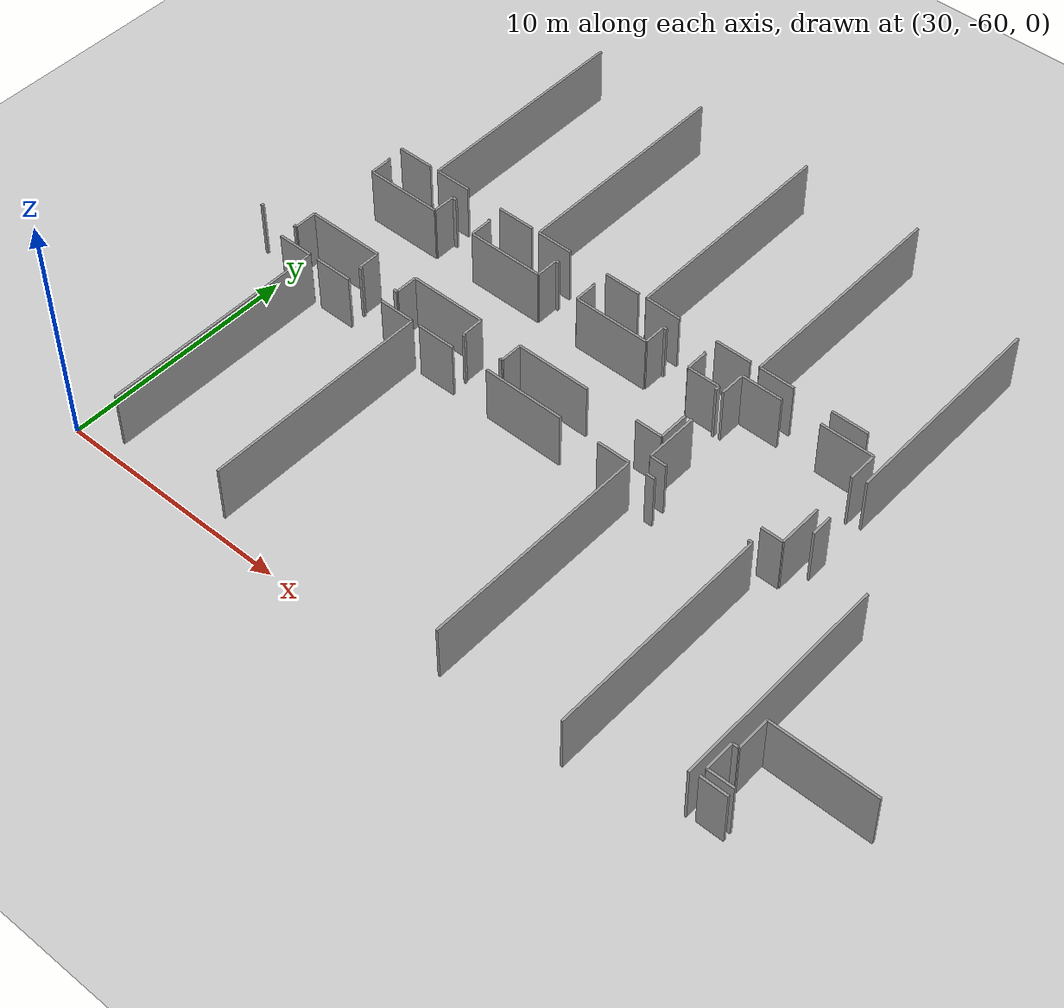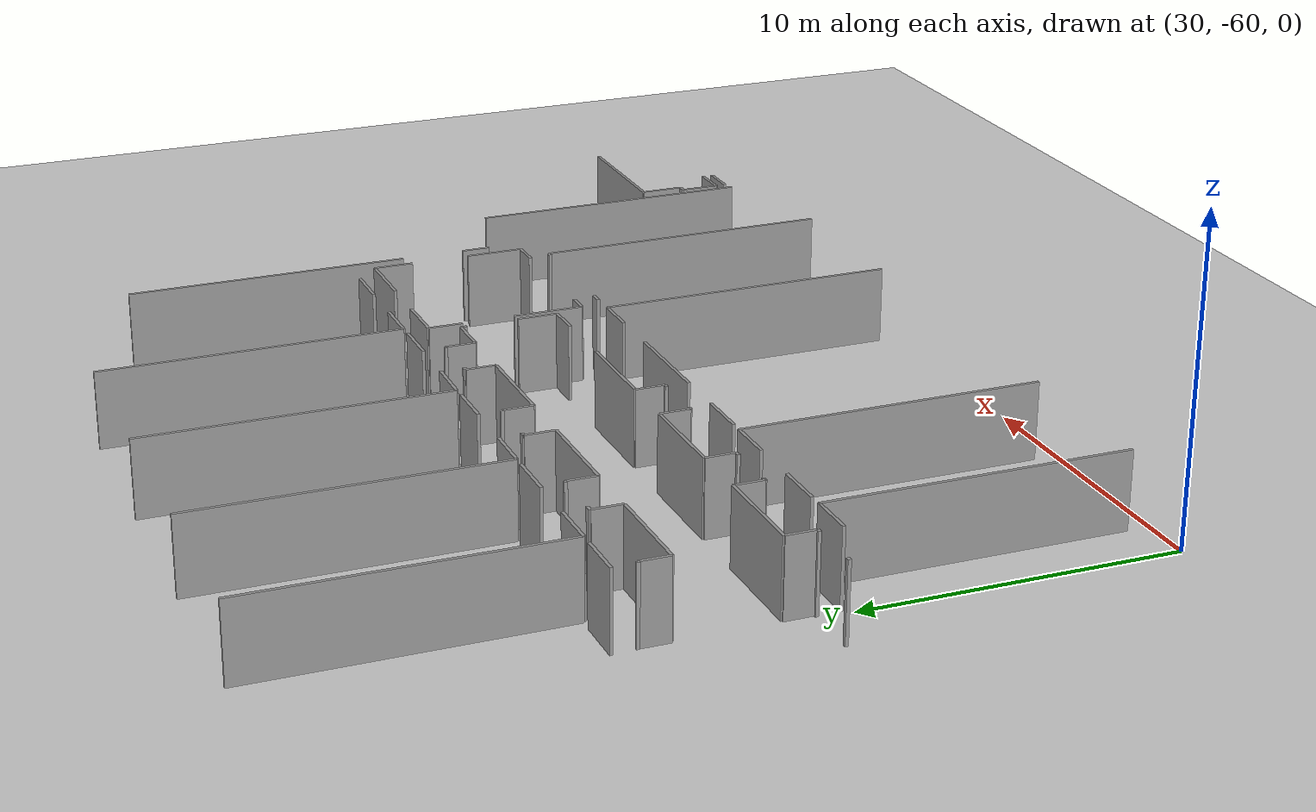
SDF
<sdf version="1.6">
 <world name="default">
  <model name="ground_plane">
   <static>1</static>
   <link name="link">
    <collision name="collision">
     <geometry><plane><normal>0 0 1</normal><size>100 100</size></plane></geometry>
     <surface><friction><ode><mu>100</mu><mu2>50</mu2></ode></friction></surface>
    </collision>
    <visual name="visual">
     <cast_shadows>0</cast_shadows>
     <geometry><plane><normal>0 0 1</normal><size>100 100</size></plane></geometry>
     <material>
      <script><uri>file://media/materials/scripts/gazebo.material</uri><name>Gazebo/Grey</name></script>
     </material>
    </visual>
   </link>
  </model>
  <model name="0510045926_A-40">
   <static>1</static>
   <link name="Wall_1794">
    <collision name="Wall_1794_Collision">
     <geometry><box><size>0.0680276425756 0.1 2.5</size></box></geometry>
     <pose>0.0340138212878 0 1.25 0 0 0</pose>
    </collision>
    <visual name="Wall_1794_Visual">
     <pose>0.0340138212878 0 1.25 0 0 0</pose>
     <geometry><box><size>0.0680276425756 0.1 2.5</size></box></geometry>
     <material>
      <script><uri>file://media/materials/scripts/gazebo.material</uri><name>Gazebo/Grey</name></script>
      <ambient>1 1 1 1</ambient>
     </material>
    </visual>
    <pose>164.12255129 -145.032700228 0 0 0 0.0</pose>
   </link>
   <link name="Wall_1795">
    <collision name="Wall_1795_Collision">
     <geometry><box><size>0.949087147725 0.1 2.5</size></box></geometry>
     <pose>0.474543573863 0 1.25 0 0 0</pose>
    </collision>
    <visual name="Wall_1795_Visual">
     <pose>0.474543573863 0 1.25 0 0 0</pose>
     <geometry><box><size>0.949087147725 0.1 2.5</size></box></geometry>
     <material>
      <script><uri>file://media/materials/scripts/gazebo.material</uri><name>Gazebo/Grey</name></script>
      <ambient>1 1 1 1</ambient>
     </material>
    </visual>
    <pose>164.190578933 -145.032700228 0 0 0 -1.57079632679</pose>
   </link>
   <link name="Wall_1796">
    <collision name="Wall_1796_Collision">
     <geometry><box><size>3.29324863723 0.1 2.5</size></box></geometry>
     <pose>1.64662431861 0 1.25 0 0 0</pose>
    </collision>
    <visual name="Wall_1796_Visual">
     <pose>1.64662431861 0 1.25 0 0 0</pose>
     <geometry><box><size>3.29324863723 0.1 2.5</size></box></geometry>
     <material>
      <script><uri>file://media/materials/scripts/gazebo.material</uri><name>Gazebo/Grey</name></script>
      <ambient>1 1 1 1</ambient>
     </material>
    </visual>
    <pose>164.190578933 -145.981787376 0 0 0 0.0</pose>
   </link>
   <link name="Wall_1797">
    <collision name="Wall_1797_Collision">
     <geometry><box><size>0.972186086063 0.1 2.5</size></box></geometry>
     <pose>0.486093043031 0 1.25 0 0 0</pose>
    </collision>
    <visual name="Wall_1797_Visual">
     <pose>0.486093043031 0 1.25 0 0 0</pose>
     <geometry><box><size>0.972186086063 0.1 2.5</size></box></geometry>
     <material>
      <script><uri>file://media/materials/scripts/gazebo.material</uri><name>Gazebo/Grey</name></script>
      <ambient>1 1 1 1</ambient>
     </material>
    </visual>
    <pose>167.48382757 -145.981787376 0 0 0 1.57079632679</pose>
   </link>
   <link name="Wall_1798">
    <collision name="Wall_1798_Collision">
     <geometry><box><size>0.20382909324 0.1 2.5</size></box></geometry>
     <pose>0.10191454662 0 1.25 0 0 0</pose>
    </collision>
    <visual name="Wall_1798_Visual">
     <pose>0.10191454662 0 1.25 0 0 0</pose>
     <geometry><box><size>0.20382909324 0.1 2.5</size></box></geometry>
     <material>
      <script><uri>file://media/materials/scripts/gazebo.material</uri><name>Gazebo/Grey</name></script>
      <ambient>1 1 1 1</ambient>
     </material>
    </visual>
    <pose>167.48382757 -145.009601289 0 0 0 0.0</pose>
   </link>
   <link name="Wall_1799">
    <collision name="Wall_1799_Collision">
     <geometry><box><size>0.0903650774513 0.1 2.5</size></box></geometry>
     <pose>0.0451825387256 0 1.25 0 0 0</pose>
    </collision>
    <visual name="Wall_1799_Visual">
     <pose>0.0451825387256 0 1.25 0 0 0</pose>
     <geometry><box><size>0.0903650774513 0.1 2.5</size></box></geometry>
     <material>
      <script><uri>file://media/materials/scripts/gazebo.material</uri><name>Gazebo/Grey</name></script>
      <ambient>1 1 1 1</ambient>
     </material>
    </visual>
    <pose>169.325396775 -145.009601289 0 0 0 0.0</pose>
   </link>
   <link name="Wall_1800">
    <collision name="Wall_1800_Collision">
     <geometry><box><size>0.971424582601 0.1 2.5</size></box></geometry>
     <pose>0.4857122913 0 1.25 0 0 0</pose>
    </collision>
    <visual name="Wall_1800_Visual">
     <pose>0.4857122913 0 1.25 0 0 0</pose>
     <geometry><box><size>0.971424582601 0.1 2.5</size></box></geometry>
     <material>
      <script><uri>file://media/materials/scripts/gazebo.material</uri><name>Gazebo/Grey</name></script>
      <ambient>1 1 1 1</ambient>
     </material>
    </visual>
    <pose>169.415761852 -145.009601289 0 0 0 -1.57079632679</pose>
   </link>
   <link name="Wall_1801">
    <collision name="Wall_1801_Collision">
     <geometry><box><size>3.30213284428 0.1 2.5</size></box></geometry>
     <pose>1.65106642214 0 1.25 0 0 0</pose>
    </collision>
    <visual name="Wall_1801_Visual">
     <pose>1.65106642214 0 1.25 0 0 0</pose>
     <geometry><box><size>3.30213284428 0.1 2.5</size></box></geometry>
     <material>
      <script><uri>file://media/materials/scripts/gazebo.material</uri><name>Gazebo/Grey</name></script>
      <ambient>1 1 1 1</ambient>
     </material>
    </visual>
    <pose>169.415761852 -145.981025872 0 0 0 0.0</pose>
   </link>
   <link name="Wall_1802">
    <collision name="Wall_1802_Collision">
     <geometry><box><size>0.973201424011 0.1 2.5</size></box></geometry>
     <pose>0.486600712006 0 1.25 0 0 0</pose>
    </collision>
    <visual name="Wall_1802_Visual">
     <pose>0.486600712006 0 1.25 0 0 0</pose>
     <geometry><box><size>0.973201424011 0.1 2.5</size></box></geometry>
     <material>
      <script><uri>file://media/materials/scripts/gazebo.material</uri><name>Gazebo/Grey</name></script>
      <ambient>1 1 1 1</ambient>
     </material>
    </visual>
    <pose>172.717894697 -145.981025872 0 0 0 1.57079632679</pose>
   </link>
   <link name="Wall_1803">
    <collision name="Wall_1803_Collision">
     <geometry><box><size>0.157377382078 0.1 2.5</size></box></geometry>
     <pose>0.078688691039 0 1.25 0 0 0</pose>
    </collision>
    <visual name="Wall_1803_Visual">
     <pose>0.078688691039 0 1.25 0 0 0</pose>
     <geometry><box><size>0.157377382078 0.1 2.5</size></box></geometry>
     <material>
      <script><uri>file://media/materials/scripts/gazebo.material</uri><name>Gazebo/Grey</name></script>
      <ambient>1 1 1 1</ambient>
     </material>
    </visual>
    <pose>172.717894697 -145.007824448 0 0 0 0.0</pose>
   </link>
   <link name="Wall_1804">
    <collision name="Wall_1804_Collision">
     <geometry><box><size>0.0705659874479 0.1 2.5</size></box></geometry>
     <pose>0.035282993724 0 1.25 0 0 0</pose>
    </collision>
    <visual name="Wall_1804_Visual">
     <pose>0.035282993724 0 1.25 0 0 0</pose>
     <geometry><box><size>0.0705659874479 0.1 2.5</size></box></geometry>
     <material>
      <script><uri>file://media/materials/scripts/gazebo.material</uri><name>Gazebo/Grey</name></script>
      <ambient>1 1 1 1</ambient>
     </material>
    </visual>
    <pose>174.549310522 -145.007824448 0 0 0 0.0</pose>
   </link>
   <link name="Wall_1805">
    <collision name="Wall_1805_Collision">
     <geometry><box><size>0.973455258499 0.1 2.5</size></box></geometry>
     <pose>0.486727629249 0 1.25 0 0 0</pose>
    </collision>
    <visual name="Wall_1805_Visual">
     <pose>0.486727629249 0 1.25 0 0 0</pose>
     <geometry><box><size>0.973455258499 0.1 2.5</size></box></geometry>
     <material>
      <script><uri>file://media/materials/scripts/gazebo.material</uri><name>Gazebo/Grey</name></script>
      <ambient>1 1 1 1</ambient>
     </material>
    </visual>
    <pose>174.61987651 -145.007824448 0 0 0 -1.57079632679</pose>
   </link>
   <link name="Wall_1806">
    <collision name="Wall_1806_Collision">
     <geometry><box><size>3.28639510607 0.1 2.5</size></box></geometry>
     <pose>1.64319755304 0 1.25 0 0 0</pose>
    </collision>
    <visual name="Wall_1806_Visual">
     <pose>1.64319755304 0 1.25 0 0 0</pose>
     <geometry><box><size>3.28639510607 0.1 2.5</size></box></geometry>
     <material>
      <script><uri>file://media/materials/scripts/gazebo.material</uri><name>Gazebo/Grey</name></script>
      <ambient>1 1 1 1</ambient>
     </material>
    </visual>
    <pose>174.61987651 -145.981279707 0 0 0 0.0</pose>
   </link>
   <link name="Wall_1807">
    <collision name="Wall_1807_Collision">
     <geometry><box><size>0.960255865163 0.1 2.5</size></box></geometry>
     <pose>0.480127932582 0 1.25 0 0 0</pose>
    </collision>
    <visual name="Wall_1807_Visual">
     <pose>0.480127932582 0 1.25 0 0 0</pose>
     <geometry><box><size>0.960255865163 0.1 2.5</size></box></geometry>
     <material>
      <script><uri>file://media/materials/scripts/gazebo.material</uri><name>Gazebo/Grey</name></script>
      <ambient>1 1 1 1</ambient>
     </material>
    </visual>
    <pose>177.906271616 -145.981279707 0 0 0 1.57079632679</pose>
   </link>
   <link name="Wall_1808">
    <collision name="Wall_1808_Collision">
     <geometry><box><size>0.155854375155 0.1 2.5</size></box></geometry>
     <pose>0.0779271875773 0 1.25 0 0 0</pose>
    </collision>
    <visual name="Wall_1808_Visual">
     <pose>0.0779271875773 0 1.25 0 0 0</pose>
     <geometry><box><size>0.155854375155 0.1 2.5</size></box></geometry>
     <material>
      <script><uri>file://media/materials/scripts/gazebo.material</uri><name>Gazebo/Grey</name></script>
      <ambient>1 1 1 1</ambient>
     </material>
    </visual>
    <pose>177.906271616 -145.021023841 0 0 0 0.0</pose>
   </link>
   <link name="Wall_1809">
    <collision name="Wall_1809_Collision">
     <geometry><box><size>0.0731043323201 0.1 2.5</size></box></geometry>
     <pose>0.03655216616 0 1.25 0 0 0</pose>
    </collision>
    <visual name="Wall_1809_Visual">
     <pose>0.03655216616 0 1.25 0 0 0</pose>
     <geometry><box><size>0.0731043323201 0.1 2.5</size></box></geometry>
     <material>
      <script><uri>file://media/materials/scripts/gazebo.material</uri><name>Gazebo/Grey</name></script>
      <ambient>1 1 1 1</ambient>
     </material>
    </visual>
    <pose>179.779316297 -145.021023841 0 0 0 0.0</pose>
   </link>
   <link name="Wall_1810">
    <collision name="Wall_1810_Collision">
     <geometry><box><size>0.953910002983 0.1 2.5</size></box></geometry>
     <pose>0.476955001491 0 1.25 0 0 0</pose>
    </collision>
    <visual name="Wall_1810_Visual">
     <pose>0.476955001491 0 1.25 0 0 0</pose>
     <geometry><box><size>0.953910002983 0.1 2.5</size></box></geometry>
     <material>
      <script><uri>file://media/materials/scripts/gazebo.material</uri><name>Gazebo/Grey</name></script>
      <ambient>1 1 1 1</ambient>
     </material>
    </visual>
    <pose>179.852420629 -145.021023841 0 0 0 -1.57079632679</pose>
   </link>
   <link name="Wall_1811">
    <collision name="Wall_1811_Collision">
     <geometry><box><size>1.39507434178 0.1 2.5</size></box></geometry>
     <pose>0.697537170888 0 1.25 0 0 0</pose>
    </collision>
    <visual name="Wall_1811_Visual">
     <pose>0.697537170888 0 1.25 0 0 0</pose>
     <geometry><box><size>1.39507434178 0.1 2.5</size></box></geometry>
     <material>
      <script><uri>file://media/materials/scripts/gazebo.material</uri><name>Gazebo/Grey</name></script>
      <ambient>1 1 1 1</ambient>
     </material>
    </visual>
    <pose>179.852420629 -145.974933844 0 0 0 0.0</pose>
   </link>
   <link name="Wall_1812">
    <collision name="Wall_1812_Collision">
     <geometry><box><size>0.193929548238 0.1 2.5</size></box></geometry>
     <pose>0.096964774119 0 1.25 0 0 0</pose>
    </collision>
    <visual name="Wall_1812_Visual">
     <pose>0.096964774119 0 1.25 0 0 0</pose>
     <geometry><box><size>0.193929548238 0.1 2.5</size></box></geometry>
     <material>
      <script><uri>file://media/materials/scripts/gazebo.material</uri><name>Gazebo/Grey</name></script>
      <ambient>1 1 1 1</ambient>
     </material>
    </visual>
    <pose>181.247494971 -145.974933844 0 0 0 -1.57079632679</pose>
   </link>
   <link name="Wall_1813">
    <collision name="Wall_1813_Collision">
     <geometry><box><size>1.2953173883 0.1 2.5</size></box></geometry>
     <pose>0.647658694148 0 1.25 0 0 0</pose>
    </collision>
    <visual name="Wall_1813_Visual">
     <pose>0.647658694148 0 1.25 0 0 0</pose>
     <geometry><box><size>1.2953173883 0.1 2.5</size></box></geometry>
     <material>
      <script><uri>file://media/materials/scripts/gazebo.material</uri><name>Gazebo/Grey</name></script>
      <ambient>1 1 1 1</ambient>
     </material>
    </visual>
    <pose>181.247494971 -147.847978526 0 0 0 -1.57079632679</pose>
   </link>
   <link name="Wall_1814">
    <collision name="Wall_1814_Collision">
     <geometry><box><size>1.15113939955 0.1 2.5</size></box></geometry>
     <pose>0.575569699777 0 1.25 0 0 0</pose>
    </collision>
    <visual name="Wall_1814_Visual">
     <pose>0.575569699777 0 1.25 0 0 0</pose>
     <geometry><box><size>1.15113939955 0.1 2.5</size></box></geometry>
     <material>
      <script><uri>file://media/materials/scripts/gazebo.material</uri><name>Gazebo/Grey</name></script>
      <ambient>1 1 1 1</ambient>
     </material>
    </visual>
    <pose>181.247494971 -149.143295914 0 0 0 3.14159265359</pose>
   </link>
   <link name="Wall_1815">
    <collision name="Wall_1815_Collision">
     <geometry><box><size>3.19552235965 0.1 2.5</size></box></geometry>
     <pose>1.59776117982 0 1.25 0 0 0</pose>
    </collision>
    <visual name="Wall_1815_Visual">
     <pose>1.59776117982 0 1.25 0 0 0</pose>
     <geometry><box><size>3.19552235965 0.1 2.5</size></box></geometry>
     <material>
      <script><uri>file://media/materials/scripts/gazebo.material</uri><name>Gazebo/Grey</name></script>
      <ambient>1 1 1 1</ambient>
     </material>
    </visual>
    <pose>177.849158856 -149.143295914 0 0 0 3.14159265359</pose>
   </link>
   <link name="Wall_1816">
    <collision name="Wall_1816_Collision">
     <geometry><box><size>0.942995120032 0.1 2.5</size></box></geometry>
     <pose>0.471497560016 0 1.25 0 0 0</pose>
    </collision>
    <visual name="Wall_1816_Visual">
     <pose>0.471497560016 0 1.25 0 0 0</pose>
     <geometry><box><size>0.942995120032 0.1 2.5</size></box></geometry>
     <material>
      <script><uri>file://media/materials/scripts/gazebo.material</uri><name>Gazebo/Grey</name></script>
      <ambient>1 1 1 1</ambient>
     </material>
    </visual>
    <pose>174.653636496 -149.143295914 0 0 0 -1.57079632679</pose>
   </link>
   <link name="Wall_1817">
    <collision name="Wall_1817_Collision">
     <geometry><box><size>0.134278443741 0.1 2.5</size></box></geometry>
     <pose>0.0671392218704 0 1.25 0 0 0</pose>
    </collision>
    <visual name="Wall_1817_Visual">
     <pose>0.0671392218704 0 1.25 0 0 0</pose>
     <geometry><box><size>0.134278443741 0.1 2.5</size></box></geometry>
     <material>
      <script><uri>file://media/materials/scripts/gazebo.material</uri><name>Gazebo/Grey</name></script>
      <ambient>1 1 1 1</ambient>
     </material>
    </visual>
    <pose>174.653636496 -150.086291034 0 0 0 3.14159265359</pose>
   </link>
   <link name="Wall_1818">
    <collision name="Wall_1818_Collision">
     <geometry><box><size>0.102549132838 0.1 2.5</size></box></geometry>
     <pose>0.051274566419 0 1.25 0 0 0</pose>
    </collision>
    <visual name="Wall_1818_Visual">
     <pose>0.051274566419 0 1.25 0 0 0</pose>
     <geometry><box><size>0.102549132838 0.1 2.5</size></box></geometry>
     <material>
      <script><uri>file://media/materials/scripts/gazebo.material</uri><name>Gazebo/Grey</name></script>
      <ambient>1 1 1 1</ambient>
     </material>
    </visual>
    <pose>172.843035099 -150.086291034 0 0 0 3.14159265359</pose>
   </link>
   <link name="Wall_1819">
    <collision name="Wall_1819_Collision">
     <geometry><box><size>0.967109396318 0.1 2.5</size></box></geometry>
     <pose>0.483554698159 0 1.25 0 0 0</pose>
    </collision>
    <visual name="Wall_1819_Visual">
     <pose>0.483554698159 0 1.25 0 0 0</pose>
     <geometry><box><size>0.967109396318 0.1 2.5</size></box></geometry>
     <material>
      <script><uri>file://media/materials/scripts/gazebo.material</uri><name>Gazebo/Grey</name></script>
      <ambient>1 1 1 1</ambient>
     </material>
    </visual>
    <pose>172.740485966 -150.086291034 0 0 0 1.57079632679</pose>
   </link>
   <link name="Wall_1820">
    <collision name="Wall_1820_Collision">
     <geometry><box><size>3.29071029235 0.1 2.5</size></box></geometry>
     <pose>1.64535514618 0 1.25 0 0 0</pose>
    </collision>
    <visual name="Wall_1820_Visual">
     <pose>1.64535514618 0 1.25 0 0 0</pose>
     <geometry><box><size>3.29071029235 0.1 2.5</size></box></geometry>
     <material>
      <script><uri>file://media/materials/scripts/gazebo.material</uri><name>Gazebo/Grey</name></script>
      <ambient>1 1 1 1</ambient>
     </material>
    </visual>
    <pose>172.740485966 -149.119181638 0 0 0 3.14159265359</pose>
   </link>
   <link name="Wall_1821">
    <collision name="Wall_1821_Collision">
     <geometry><box><size>0.959240527214 0.1 2.5</size></box></geometry>
     <pose>0.479620263607 0 1.25 0 0 0</pose>
    </collision>
    <visual name="Wall_1821_Visual">
     <pose>0.479620263607 0 1.25 0 0 0</pose>
     <geometry><box><size>0.959240527214 0.1 2.5</size></box></geometry>
     <material>
      <script><uri>file://media/materials/scripts/gazebo.material</uri><name>Gazebo/Grey</name></script>
      <ambient>1 1 1 1</ambient>
     </material>
    </visual>
    <pose>169.449775674 -149.119181638 0 0 0 -1.57079632679</pose>
   </link>
   <link name="Wall_1822">
    <collision name="Wall_1822_Collision">
     <geometry><box><size>0.161946402848 0.1 2.5</size></box></geometry>
     <pose>0.080973201424 0 1.25 0 0 0</pose>
    </collision>
    <visual name="Wall_1822_Visual">
     <pose>0.080973201424 0 1.25 0 0 0</pose>
     <geometry><box><size>0.161946402848 0.1 2.5</size></box></geometry>
     <material>
      <script><uri>file://media/materials/scripts/gazebo.material</uri><name>Gazebo/Grey</name></script>
      <ambient>1 1 1 1</ambient>
     </material>
    </visual>
    <pose>169.449775674 -150.078422165 0 0 0 3.14159265359</pose>
   </link>
   <link name="Wall_1823">
    <collision name="Wall_1823_Collision">
     <geometry><box><size>0.129201753996 0.1 2.5</size></box></geometry>
     <pose>0.0646008769981 0 1.25 0 0 0</pose>
    </collision>
    <visual name="Wall_1823_Visual">
     <pose>0.0646008769981 0 1.25 0 0 0</pose>
     <geometry><box><size>0.129201753996 0.1 2.5</size></box></geometry>
     <material>
      <script><uri>file://media/materials/scripts/gazebo.material</uri><name>Gazebo/Grey</name></script>
      <ambient>1 1 1 1</ambient>
     </material>
    </visual>
    <pose>167.641712621 -150.078422165 0 0 0 3.14159265359</pose>
   </link>
   <link name="Wall_1824">
    <collision name="Wall_1824_Collision">
     <geometry><box><size>0.953910002983 0.1 2.5</size></box></geometry>
     <pose>0.476955001491 0 1.25 0 0 0</pose>
    </collision>
    <visual name="Wall_1824_Visual">
     <pose>0.476955001491 0 1.25 0 0 0</pose>
     <geometry><box><size>0.953910002983 0.1 2.5</size></box></geometry>
     <material>
      <script><uri>file://media/materials/scripts/gazebo.material</uri><name>Gazebo/Grey</name></script>
      <ambient>1 1 1 1</ambient>
     </material>
    </visual>
    <pose>167.512510867 -150.078422165 0 0 0 1.57079632679</pose>
   </link>
   <link name="Wall_1825">
    <collision name="Wall_1825_Collision">
     <geometry><box><size>3.31101705133 0.1 2.5</size></box></geometry>
     <pose>1.65550852567 0 1.25 0 0 0</pose>
    </collision>
    <visual name="Wall_1825_Visual">
     <pose>1.65550852567 0 1.25 0 0 0</pose>
     <geometry><box><size>3.31101705133 0.1 2.5</size></box></geometry>
     <material>
      <script><uri>file://media/materials/scripts/gazebo.material</uri><name>Gazebo/Grey</name></script>
      <ambient>1 1 1 1</ambient>
     </material>
    </visual>
    <pose>167.512510867 -149.124512162 0 0 0 3.14159265359</pose>
   </link>
   <link name="Wall_1826">
    <collision name="Wall_1826_Collision">
     <geometry><box><size>0.95416383747 0.1 2.5</size></box></geometry>
     <pose>0.477081918735 0 1.25 0 0 0</pose>
    </collision>
    <visual name="Wall_1826_Visual">
     <pose>0.477081918735 0 1.25 0 0 0</pose>
     <geometry><box><size>0.95416383747 0.1 2.5</size></box></geometry>
     <material>
      <script><uri>file://media/materials/scripts/gazebo.material</uri><name>Gazebo/Grey</name></script>
      <ambient>1 1 1 1</ambient>
     </material>
    </visual>
    <pose>164.201493816 -149.124512162 0 0 0 -1.57079632679</pose>
   </link>
   <link name="Wall_1827">
    <collision name="Wall_1827_Collision">
     <geometry><box><size>0.118540705533 0.1 2.5</size></box></geometry>
     <pose>0.0592703527665 0 1.25 0 0 0</pose>
    </collision>
    <visual name="Wall_1827_Visual">
     <pose>0.0592703527665 0 1.25 0 0 0</pose>
     <geometry><box><size>0.118540705533 0.1 2.5</size></box></geometry>
     <material>
      <script><uri>file://media/materials/scripts/gazebo.material</uri><name>Gazebo/Grey</name></script>
      <ambient>1 1 1 1</ambient>
     </material>
    </visual>
    <pose>164.201493816 -150.078675999 0 0 0 3.14159265359</pose>
   </link>
   <link name="Wall_1828">
    <collision name="Wall_1828_Collision">
     <geometry><box><size>0.124632733226 0.1 2.5</size></box></geometry>
     <pose>0.0623163666131 0 1.25 0 0 0</pose>
    </collision>
    <visual name="Wall_1828_Visual">
     <pose>0.0623163666131 0 1.25 0 0 0</pose>
     <geometry><box><size>0.124632733226 0.1 2.5</size></box></geometry>
     <material>
      <script><uri>file://media/materials/scripts/gazebo.material</uri><name>Gazebo/Grey</name></script>
      <ambient>1 1 1 1</ambient>
     </material>
    </visual>
    <pose>162.434298116 -150.078675999 0 0 0 3.14159265359</pose>
   </link>
   <link name="Wall_1892">
    <collision name="Wall_1892_Collision">
     <geometry><box><size>1.52224541987 0.1 2.5</size></box></geometry>
     <pose>0.761122709937 0 1.25 0 0 0</pose>
    </collision>
    <visual name="Wall_1892_Visual">
     <pose>0.761122709937 0 1.25 0 0 0</pose>
     <geometry><box><size>1.52224541987 0.1 2.5</size></box></geometry>
     <material>
      <script><uri>file://media/materials/scripts/gazebo.material</uri><name>Gazebo/Grey</name></script>
      <ambient>1 1 1 1</ambient>
     </material>
    </visual>
    <pose>164.127374146 -150.804134964 0 0 0 0.0</pose>
   </link>
   <link name="Wall_1893">
    <collision name="Wall_1893_Collision">
     <geometry><box><size>9.60205098266 0.1 2.5</size></box></geometry>
     <pose>4.80102549133 0 1.25 0 0 0</pose>
    </collision>
    <visual name="Wall_1893_Visual">
     <pose>4.80102549133 0 1.25 0 0 0</pose>
     <geometry><box><size>9.60205098266 0.1 2.5</size></box></geometry>
     <material>
      <script><uri>file://media/materials/scripts/gazebo.material</uri><name>Gazebo/Grey</name></script>
      <ambient>1 1 1 1</ambient>
     </material>
    </visual>
    <pose>165.649619566 -150.804134964 0 0 0 -1.57079632679</pose>
   </link>
   <link name="Wall_1897">
    <collision name="Wall_1897_Collision">
     <geometry><box><size>1.62631755964 0.1 2.5</size></box></geometry>
     <pose>0.813158779818 0 1.25 0 0 0</pose>
    </collision>
    <visual name="Wall_1897_Visual">
     <pose>0.813158779818 0 1.25 0 0 0</pose>
     <geometry><box><size>1.62631755964 0.1 2.5</size></box></geometry>
     <material>
      <script><uri>file://media/materials/scripts/gazebo.material</uri><name>Gazebo/Grey</name></script>
      <ambient>1 1 1 1</ambient>
     </material>
    </visual>
    <pose>166.049155048 -150.790681736 0 0 0 0.0</pose>
   </link>
   <link name="Wall_1898">
    <collision name="Wall_1898_Collision">
     <geometry><box><size>1.53722165462 0.1 2.5</size></box></geometry>
     <pose>0.76861082731 0 1.25 0 0 0</pose>
    </collision>
    <visual name="Wall_1898_Visual">
     <pose>0.76861082731 0 1.25 0 0 0</pose>
     <geometry><box><size>1.53722165462 0.1 2.5</size></box></geometry>
     <material>
      <script><uri>file://media/materials/scripts/gazebo.material</uri><name>Gazebo/Grey</name></script>
      <ambient>1 1 1 1</ambient>
     </material>
    </visual>
    <pose>169.349511051 -150.790681736 0 0 0 0.0</pose>
   </link>
   <link name="Wall_1899">
    <collision name="Wall_1899_Collision">
     <geometry><box><size>9.61931172779 0.1 2.5</size></box></geometry>
     <pose>4.80965586389 0 1.25 0 0 0</pose>
    </collision>
    <visual name="Wall_1899_Visual">
     <pose>4.80965586389 0 1.25 0 0 0</pose>
     <geometry><box><size>9.61931172779 0.1 2.5</size></box></geometry>
     <material>
      <script><uri>file://media/materials/scripts/gazebo.material</uri><name>Gazebo/Grey</name></script>
      <ambient>1 1 1 1</ambient>
     </material>
    </visual>
    <pose>170.886732706 -150.790681736 0 0 0 -1.57079632679</pose>
   </link>
   <link name="Wall_1903">
    <collision name="Wall_1903_Collision">
     <geometry><box><size>1.63545560118 0.1 2.5</size></box></geometry>
     <pose>0.817727800588 0 1.25 0 0 0</pose>
    </collision>
    <visual name="Wall_1903_Visual">
     <pose>0.817727800588 0 1.25 0 0 0</pose>
     <geometry><box><size>1.63545560118 0.1 2.5</size></box></geometry>
     <material>
      <script><uri>file://media/materials/scripts/gazebo.material</uri><name>Gazebo/Grey</name></script>
      <ambient>1 1 1 1</ambient>
     </material>
    </visual>
    <pose>171.266215264 -150.798042936 0 0 0 0.0</pose>
   </link>
   <link name="Wall_1904">
    <collision name="Wall_1904_Collision">
     <geometry><box><size>3.48286299918 0.1 2.5</size></box></geometry>
     <pose>1.74143149959 0 1.25 0 0 0</pose>
    </collision>
    <visual name="Wall_1904_Visual">
     <pose>1.74143149959 0 1.25 0 0 0</pose>
     <geometry><box><size>3.48286299918 0.1 2.5</size></box></geometry>
     <material>
      <script><uri>file://media/materials/scripts/gazebo.material</uri><name>Gazebo/Grey</name></script>
      <ambient>1 1 1 1</ambient>
     </material>
    </visual>
    <pose>174.551848867 -150.798042936 0 0 0 0.0</pose>
   </link>
   <link name="Wall_1905">
    <collision name="Wall_1905_Collision">
     <geometry><box><size>1.40776606614 0.1 2.5</size></box></geometry>
     <pose>0.703883033068 0 1.25 0 0 0</pose>
    </collision>
    <visual name="Wall_1905_Visual">
     <pose>0.703883033068 0 1.25 0 0 0</pose>
     <geometry><box><size>1.40776606614 0.1 2.5</size></box></geometry>
     <material>
      <script><uri>file://media/materials/scripts/gazebo.material</uri><name>Gazebo/Grey</name></script>
      <ambient>1 1 1 1</ambient>
     </material>
    </visual>
    <pose>179.758755703 -150.798042936 0 0 0 0.0</pose>
   </link>
   <link name="Wall_1906">
    <collision name="Wall_1906_Collision">
     <geometry><box><size>9.61829638984 0.1 2.5</size></box></geometry>
     <pose>4.80914819492 0 1.25 0 0 0</pose>
    </collision>
    <visual name="Wall_1906_Visual">
     <pose>4.80914819492 0 1.25 0 0 0</pose>
     <geometry><box><size>9.61829638984 0.1 2.5</size></box></geometry>
     <material>
      <script><uri>file://media/materials/scripts/gazebo.material</uri><name>Gazebo/Grey</name></script>
      <ambient>1 1 1 1</ambient>
     </material>
    </visual>
    <pose>181.166521769 -150.798042936 0 0 0 -1.57079632679</pose>
   </link>
   <link name="Wall_1947">
    <collision name="Wall_1947_Collision">
     <geometry><box><size>1.57580449668 0.1 2.5</size></box></geometry>
     <pose>0.787902248339 0 1.25 0 0 0</pose>
    </collision>
    <visual name="Wall_1947_Visual">
     <pose>0.787902248339 0 1.25 0 0 0</pose>
     <geometry><box><size>1.57580449668 0.1 2.5</size></box></geometry>
     <material>
      <script><uri>file://media/materials/scripts/gazebo.material</uri><name>Gazebo/Grey</name></script>
      <ambient>1 1 1 1</ambient>
     </material>
    </visual>
    <pose>165.655203924 -144.277796463 0 0 0 3.14159265359</pose>
   </link>
   <link name="Wall_1950">
    <collision name="Wall_1950_Collision">
     <geometry><box><size>9.61372736907 0.1 2.5</size></box></geometry>
     <pose>4.80686368453 0 1.25 0 0 0</pose>
    </collision>
    <visual name="Wall_1950_Visual">
     <pose>4.80686368453 0 1.25 0 0 0</pose>
     <geometry><box><size>9.61372736907 0.1 2.5</size></box></geometry>
     <material>
      <script><uri>file://media/materials/scripts/gazebo.material</uri><name>Gazebo/Grey</name></script>
      <ambient>1 1 1 1</ambient>
     </material>
    </visual>
    <pose>166.046616704 -144.283888491 0 0 0 1.57079632679</pose>
   </link>
   <link name="Wall_1954">
    <collision name="Wall_1954_Collision">
     <geometry><box><size>1.64433980823 0.1 2.5</size></box></geometry>
     <pose>0.822169904114 0 1.25 0 0 0</pose>
    </collision>
    <visual name="Wall_1954_Visual">
     <pose>0.822169904114 0 1.25 0 0 0</pose>
     <geometry><box><size>1.64433980823 0.1 2.5</size></box></geometry>
     <material>
      <script><uri>file://media/materials/scripts/gazebo.material</uri><name>Gazebo/Grey</name></script>
      <ambient>1 1 1 1</ambient>
     </material>
    </visual>
    <pose>170.903739617 -144.276019621 0 0 0 3.14159265359</pose>
   </link>
   <link name="Wall_1955">
    <collision name="Wall_1955_Collision">
     <geometry><box><size>1.56846303546 0.1 2.5</size></box></geometry>
     <pose>0.784231517728 0 1.25 0 0 0</pose>
    </collision>
    <visual name="Wall_1955_Visual">
     <pose>0.784231517728 0 1.25 0 0 0</pose>
     <geometry><box><size>1.56846303546 0.1 2.5</size></box></geometry>
     <material>
      <script><uri>file://media/materials/scripts/gazebo.material</uri><name>Gazebo/Grey</name></script>
      <ambient>1 1 1 1</ambient>
     </material>
    </visual>
    <pose>167.61506 -144.276019621 0 0 0 -3.13657570264</pose>
   </link>
   <link name="Wall_1956">
    <collision name="Wall_1956_Collision">
     <geometry><box><size>9.63860314882 0.1 2.5</size></box></geometry>
     <pose>4.81930157441 0 1.25 0 0 0</pose>
    </collision>
    <visual name="Wall_1956_Visual">
     <pose>4.81930157441 0 1.25 0 0 0</pose>
     <geometry><box><size>9.63860314882 0.1 2.5</size></box></geometry>
     <material>
      <script><uri>file://media/materials/scripts/gazebo.material</uri><name>Gazebo/Grey</name></script>
      <ambient>1 1 1 1</ambient>
     </material>
    </visual>
    <pose>171.252000533 -144.280842477 0 0 0 1.57079632679</pose>
   </link>
   <link name="Wall_1960">
    <collision name="Wall_1960_Collision">
     <geometry><box><size>1.5714893104 0.1 2.5</size></box></geometry>
     <pose>0.785744655198 0 1.25 0 0 0</pose>
    </collision>
    <visual name="Wall_1960_Visual">
     <pose>0.785744655198 0 1.25 0 0 0</pose>
     <geometry><box><size>1.5714893104 0.1 2.5</size></box></geometry>
     <material>
      <script><uri>file://media/materials/scripts/gazebo.material</uri><name>Gazebo/Grey</name></script>
      <ambient>1 1 1 1</ambient>
     </material>
    </visual>
    <pose>176.144152605 -144.292265029 0 0 0 3.14159265359</pose>
   </link>
   <link name="Wall_1961">
    <collision name="Wall_1961_Collision">
     <geometry><box><size>1.56823106193 0.1 2.5</size></box></geometry>
     <pose>0.784115530967 0 1.25 0 0 0</pose>
    </collision>
    <visual name="Wall_1961_Visual">
     <pose>0.784115530967 0 1.25 0 0 0</pose>
     <geometry><box><size>1.56823106193 0.1 2.5</size></box></geometry>
     <material>
      <script><uri>file://media/materials/scripts/gazebo.material</uri><name>Gazebo/Grey</name></script>
      <ambient>1 1 1 1</ambient>
     </material>
    </visual>
    <pose>172.820189995 -144.292265029 0 0 0 3.13430887175</pose>
   </link>
   <link name="Wall_1962">
    <collision name="Wall_1962_Collision">
     <geometry><box><size>9.62286541061 0.1 2.5</size></box></geometry>
     <pose>4.8114327053 0 1.25 0 0 0</pose>
    </collision>
    <visual name="Wall_1962_Visual">
     <pose>4.8114327053 0 1.25 0 0 0</pose>
     <geometry><box><size>9.62286541061 0.1 2.5</size></box></geometry>
     <material>
      <script><uri>file://media/materials/scripts/gazebo.material</uri><name>Gazebo/Grey</name></script>
      <ambient>1 1 1 1</ambient>
     </material>
    </visual>
    <pose>176.496982543 -144.272212104 0 0 0 1.57079632679</pose>
   </link>
   <link name="Wall_1966">
    <collision name="Wall_1966_Collision">
     <geometry><box><size>1.57225081386 0.1 2.5</size></box></geometry>
     <pose>0.786125406928 0 1.25 0 0 0</pose>
    </collision>
    <visual name="Wall_1966_Visual">
     <pose>0.786125406928 0 1.25 0 0 0</pose>
     <geometry><box><size>1.57225081386 0.1 2.5</size></box></geometry>
     <material>
      <script><uri>file://media/materials/scripts/gazebo.material</uri><name>Gazebo/Grey</name></script>
      <ambient>1 1 1 1</ambient>
     </material>
    </visual>
    <pose>181.341667566 -144.296580215 0 0 0 3.14159265359</pose>
   </link>
   <link name="Wall_1967">
    <collision name="Wall_1967_Collision">
     <geometry><box><size>1.57827713632 0.1 2.5</size></box></geometry>
     <pose>0.789138568161 0 1.25 0 0 0</pose>
    </collision>
    <visual name="Wall_1967_Visual">
     <pose>0.789138568161 0 1.25 0 0 0</pose>
     <geometry><box><size>1.57827713632 0.1 2.5</size></box></geometry>
     <material>
      <script><uri>file://media/materials/scripts/gazebo.material</uri><name>Gazebo/Grey</name></script>
      <ambient>1 1 1 1</ambient>
     </material>
    </visual>
    <pose>178.07507155 -144.296580215 0 0 0 3.12615234943</pose>
   </link>
   <link name="Wall_1968">
    <collision name="Wall_1968_Collision">
     <geometry><box><size>9.59164376868 0.1 2.5</size></box></geometry>
     <pose>4.79582188434 0 1.25 0 0 0</pose>
    </collision>
    <visual name="Wall_1968_Visual">
     <pose>4.79582188434 0 1.25 0 0 0</pose>
     <geometry><box><size>9.59164376868 0.1 2.5</size></box></geometry>
     <material>
      <script><uri>file://media/materials/scripts/gazebo.material</uri><name>Gazebo/Grey</name></script>
      <ambient>1 1 1 1</ambient>
     </material>
    </visual>
    <pose>181.750848759 -144.27931947 0 0 0 1.57079632679</pose>
   </link>
   <link name="Wall_1972">
    <collision name="Wall_1972_Collision">
     <geometry><box><size>1.5892577245 0.1 2.5</size></box></geometry>
     <pose>0.79462886225 0 1.25 0 0 0</pose>
    </collision>
    <visual name="Wall_1972_Visual">
     <pose>0.79462886225 0 1.25 0 0 0</pose>
     <geometry><box><size>1.5892577245 0.1 2.5</size></box></geometry>
     <material>
      <script><uri>file://media/materials/scripts/gazebo.material</uri><name>Gazebo/Grey</name></script>
      <ambient>1 1 1 1</ambient>
     </material>
    </visual>
    <pose>186.523952457 -144.285411497 0 0 0 3.14159265359</pose>
   </link>
   <link name="Wall_1973">
    <collision name="Wall_1973_Collision">
     <geometry><box><size>1.53926438593 0.1 2.5</size></box></geometry>
     <pose>0.769632192967 0 1.25 0 0 0</pose>
    </collision>
    <visual name="Wall_1973_Visual">
     <pose>0.769632192967 0 1.25 0 0 0</pose>
     <geometry><box><size>1.53926438593 0.1 2.5</size></box></geometry>
     <material>
      <script><uri>file://media/materials/scripts/gazebo.material</uri><name>Gazebo/Grey</name></script>
      <ambient>1 1 1 1</ambient>
     </material>
    </visual>
    <pose>183.29010109 -144.285411497 0 0 0 3.13763489061</pose>
   </link>
   <link name="Wall_1974">
    <collision name="Wall_1974_Collision">
     <geometry><box><size>2.25633475692 0.1 2.5</size></box></geometry>
     <pose>1.12816737846 0 1.25 0 0 0</pose>
    </collision>
    <visual name="Wall_1974_Visual">
     <pose>1.12816737846 0 1.25 0 0 0</pose>
     <geometry><box><size>2.25633475692 0.1 2.5</size></box></geometry>
     <material>
      <script><uri>file://media/materials/scripts/gazebo.material</uri><name>Gazebo/Grey</name></script>
      <ambient>1 1 1 1</ambient>
     </material>
    </visual>
    <pose>181.525697569 -150.070553296 0 0 0 1.57079632679</pose>
   </link>
   <link name="Wall_1975">
    <collision name="Wall_1975_Collision">
     <geometry><box><size>1.09910332967 0.1 2.5</size></box></geometry>
     <pose>0.549551664837 0 1.25 0 0 0</pose>
    </collision>
    <visual name="Wall_1975_Visual">
     <pose>0.549551664837 0 1.25 0 0 0</pose>
     <geometry><box><size>1.09910332967 0.1 2.5</size></box></geometry>
     <material>
      <script><uri>file://media/materials/scripts/gazebo.material</uri><name>Gazebo/Grey</name></script>
      <ambient>1 1 1 1</ambient>
     </material>
    </visual>
    <pose>181.525697569 -146.116827323 0 0 0 1.57079632679</pose>
   </link>
   <link name="Wall_1976">
    <collision name="Wall_1976_Collision">
     <geometry><box><size>1.77684141056 0.1 2.5</size></box></geometry>
     <pose>0.888420705279 0 1.25 0 0 0</pose>
    </collision>
    <visual name="Wall_1976_Visual">
     <pose>0.888420705279 0 1.25 0 0 0</pose>
     <geometry><box><size>1.77684141056 0.1 2.5</size></box></geometry>
     <material>
      <script><uri>file://media/materials/scripts/gazebo.material</uri><name>Gazebo/Grey</name></script>
      <ambient>1 1 1 1</ambient>
     </material>
    </visual>
    <pose>181.525697569 -145.017723993 0 0 0 0.0</pose>
   </link>
   <link name="Wall_1977">
    <collision name="Wall_1977_Collision">
     <geometry><box><size>2.27359550205 0.1 2.5</size></box></geometry>
     <pose>1.13679775103 0 1.25 0 0 0</pose>
    </collision>
    <visual name="Wall_1977_Visual">
     <pose>1.13679775103 0 1.25 0 0 0</pose>
     <geometry><box><size>2.27359550205 0.1 2.5</size></box></geometry>
     <material>
      <script><uri>file://media/materials/scripts/gazebo.material</uri><name>Gazebo/Grey</name></script>
      <ambient>1 1 1 1</ambient>
     </material>
    </visual>
    <pose>185.007291396 -145.017723993 0 0 0 0.0</pose>
   </link>
   <link name="Wall_1978">
    <collision name="Wall_1978_Collision">
     <geometry><box><size>1.27171078099 0.1 2.5</size></box></geometry>
     <pose>0.635855390493 0 1.25 0 0 0</pose>
    </collision>
    <visual name="Wall_1978_Visual">
     <pose>0.635855390493 0 1.25 0 0 0</pose>
     <geometry><box><size>1.27171078099 0.1 2.5</size></box></geometry>
     <material>
      <script><uri>file://media/materials/scripts/gazebo.material</uri><name>Gazebo/Grey</name></script>
      <ambient>1 1 1 1</ambient>
     </material>
    </visual>
    <pose>187.280886898 -145.017723993 0 0 0 -1.57079632679</pose>
   </link>
   <link name="Wall_1979">
    <collision name="Wall_1979_Collision">
     <geometry><box><size>1.86898332942 0.1 2.5</size></box></geometry>
     <pose>0.93449166471 0 1.25 0 0 0</pose>
    </collision>
    <visual name="Wall_1979_Visual">
     <pose>0.93449166471 0 1.25 0 0 0</pose>
     <geometry><box><size>1.86898332942 0.1 2.5</size></box></geometry>
     <material>
      <script><uri>file://media/materials/scripts/gazebo.material</uri><name>Gazebo/Grey</name></script>
      <ambient>1 1 1 1</ambient>
     </material>
    </visual>
    <pose>187.280886898 -148.209438835 0 0 0 -1.57079632679</pose>
   </link>
   <link name="Wall_1980">
    <collision name="Wall_1980_Collision">
     <geometry><box><size>0.937156926826 0.1 2.5</size></box></geometry>
     <pose>0.468578463413 0 1.25 0 0 0</pose>
    </collision>
    <visual name="Wall_1980_Visual">
     <pose>0.468578463413 0 1.25 0 0 0</pose>
     <geometry><box><size>0.937156926826 0.1 2.5</size></box></geometry>
     <material>
      <script><uri>file://media/materials/scripts/gazebo.material</uri><name>Gazebo/Grey</name></script>
      <ambient>1 1 1 1</ambient>
     </material>
    </visual>
    <pose>187.280886898 -150.078422165 0 0 0 3.14159265359</pose>
   </link>
   <link name="Wall_1981">
    <collision name="Wall_1981_Collision">
     <geometry><box><size>0.695551007241 0.1 2.5</size></box></geometry>
     <pose>0.347775503621 0 1.25 0 0 0</pose>
    </collision>
    <visual name="Wall_1981_Visual">
     <pose>0.347775503621 0 1.25 0 0 0</pose>
     <geometry><box><size>0.695551007241 0.1 2.5</size></box></geometry>
     <material>
      <script><uri>file://media/materials/scripts/gazebo.material</uri><name>Gazebo/Grey</name></script>
      <ambient>1 1 1 1</ambient>
     </material>
    </visual>
    <pose>182.221204064 -150.078422165 0 0 0 3.13027926768</pose>
   </link>
   <link name="Wall_1983">
    <collision name="Wall_1983_Collision">
     <geometry><box><size>0.373136696217 0.1 2.5</size></box></geometry>
     <pose>0.186568348109 0 1.25 0 0 0</pose>
    </collision>
    <visual name="Wall_1983_Visual">
     <pose>0.186568348109 0 1.25 0 0 0</pose>
     <geometry><box><size>0.373136696217 0.1 2.5</size></box></geometry>
     <material>
      <script><uri>file://media/materials/scripts/gazebo.material</uri><name>Gazebo/Grey</name></script>
      <ambient>1 1 1 1</ambient>
     </material>
    </visual>
    <pose>181.933863424 -150.788143391 0 0 0 0.0</pose>
   </link>
   <link name="Wall_1984">
    <collision name="Wall_1984_Collision">
     <geometry><box><size>0.170830609901 0.1 2.5</size></box></geometry>
     <pose>0.0854153049504 0 1.25 0 0 0</pose>
    </collision>
    <visual name="Wall_1984_Visual">
     <pose>0.0854153049504 0 1.25 0 0 0</pose>
     <geometry><box><size>0.170830609901 0.1 2.5</size></box></geometry>
     <material>
      <script><uri>file://media/materials/scripts/gazebo.material</uri><name>Gazebo/Grey</name></script>
      <ambient>1 1 1 1</ambient>
     </material>
    </visual>
    <pose>186.362767557 -150.788143391 0 0 0 0.0</pose>
   </link>
   <link name="Wall_1985">
    <collision name="Wall_1985_Collision">
     <geometry><box><size>9.6210885692 0.1 2.5</size></box></geometry>
     <pose>4.8105442846 0 1.25 0 0 0</pose>
    </collision>
    <visual name="Wall_1985_Visual">
     <pose>4.8105442846 0 1.25 0 0 0</pose>
     <geometry><box><size>9.6210885692 0.1 2.5</size></box></geometry>
     <material>
      <script><uri>file://media/materials/scripts/gazebo.material</uri><name>Gazebo/Grey</name></script>
      <ambient>1 1 1 1</ambient>
     </material>
    </visual>
    <pose>186.533598167 -150.788143391 0 0 0 -1.57079632679</pose>
   </link>
   <link name="Wall_2053">
    <collision name="Wall_2053_Collision">
     <geometry><box><size>1.13895534417 0.1 2.5</size></box></geometry>
     <pose>0.569477672084 0 1.25 0 0 0</pose>
    </collision>
    <visual name="Wall_2053_Visual">
     <pose>0.569477672084 0 1.25 0 0 0</pose>
     <geometry><box><size>1.13895534417 0.1 2.5</size></box></geometry>
     <material>
      <script><uri>file://media/materials/scripts/gazebo.material</uri><name>Gazebo/Grey</name></script>
      <ambient>1 1 1 1</ambient>
     </material>
    </visual>
    <pose>191.040683322 -159.122544945 0 0 0 0.0</pose>
   </link>
   <link name="Wall_2063">
    <collision name="Wall_2063_Collision">
     <geometry><box><size>9.24998254888 0.1 2.5</size></box></geometry>
     <pose>4.62499127444 0 1.25 0 0 0</pose>
    </collision>
    <visual name="Wall_2063_Visual">
     <pose>4.62499127444 0 1.25 0 0 0</pose>
     <geometry><box><size>9.24998254888 0.1 2.5</size></box></geometry>
     <material>
      <script><uri>file://media/materials/scripts/gazebo.material</uri><name>Gazebo/Grey</name></script>
      <ambient>1 1 1 1</ambient>
     </material>
    </visual>
    <pose>190.695976089 -149.997195129 0 0 0 -1.57079632679</pose>
   </link>
   <link name="Wall_2123">
    <collision name="Wall_2123_Collision">
     <geometry><box><size>1.25571920829 0.1 2.5</size></box></geometry>
     <pose>0.627859604145 0 1.25 0 0 0</pose>
    </collision>
    <visual name="Wall_2123_Visual">
     <pose>0.627859604145 0 1.25 0 0 0</pose>
     <geometry><box><size>1.25571920829 0.1 2.5</size></box></geometry>
     <material>
      <script><uri>file://media/materials/scripts/gazebo.material</uri><name>Gazebo/Grey</name></script>
      <ambient>1 1 1 1</ambient>
     </material>
    </visual>
    <pose>191.038906481 -158.778091545 0 0 0 1.57079632679</pose>
   </link>
   <link name="Wall_2124">
    <collision name="Wall_2124_Collision">
     <geometry><box><size>0.267541549533 0.1 2.5</size></box></geometry>
     <pose>0.133770774766 0 1.25 0 0 0</pose>
    </collision>
    <visual name="Wall_2124_Visual">
     <pose>0.133770774766 0 1.25 0 0 0</pose>
     <geometry><box><size>0.267541549533 0.1 2.5</size></box></geometry>
     <material>
      <script><uri>file://media/materials/scripts/gazebo.material</uri><name>Gazebo/Grey</name></script>
      <ambient>1 1 1 1</ambient>
     </material>
    </visual>
    <pose>191.038906481 -157.522372337 0 0 0 0.0</pose>
   </link>
   <link name="Wall_2125">
    <collision name="Wall_2125_Collision">
     <geometry><box><size>1.41106591447 0.1 2.5</size></box></geometry>
     <pose>0.705532957235 0 1.25 0 0 0</pose>
    </collision>
    <visual name="Wall_2125_Visual">
     <pose>0.705532957235 0 1.25 0 0 0</pose>
     <geometry><box><size>1.41106591447 0.1 2.5</size></box></geometry>
     <material>
      <script><uri>file://media/materials/scripts/gazebo.material</uri><name>Gazebo/Grey</name></script>
      <ambient>1 1 1 1</ambient>
     </material>
    </visual>
    <pose>191.306448031 -157.522372337 0 0 0 1.57079632679</pose>
   </link>
   <link name="Wall_2126">
    <collision name="Wall_2126_Collision">
     <geometry><box><size>4.40504369126 0.1 2.5</size></box></geometry>
     <pose>2.20252184563 0 1.25 0 0 0</pose>
    </collision>
    <visual name="Wall_2126_Visual">
     <pose>2.20252184563 0 1.25 0 0 0</pose>
     <geometry><box><size>4.40504369126 0.1 2.5</size></box></geometry>
     <material>
      <script><uri>file://media/materials/scripts/gazebo.material</uri><name>Gazebo/Grey</name></script>
      <ambient>1 1 1 1</ambient>
     </material>
    </visual>
    <pose>191.306448031 -156.111306423 0 0 0 0.0</pose>
   </link>
   <link name="Wall_2129">
    <collision name="Wall_2129_Collision">
     <geometry><box><size>1.1120975859 0.1 2.5</size></box></geometry>
     <pose>0.55604879295 0 1.25 0 0 0</pose>
    </collision>
    <visual name="Wall_2129_Visual">
     <pose>0.55604879295 0 1.25 0 0 0</pose>
     <geometry><box><size>1.1120975859 0.1 2.5</size></box></geometry>
     <material>
      <script><uri>file://media/materials/scripts/gazebo.material</uri><name>Gazebo/Grey</name></script>
      <ambient>1 1 1 1</ambient>
     </material>
    </visual>
    <pose>192.15095537 -158.767684331 0 0 0 -3.13223433287</pose>
   </link>
   <link name="Wall_2195">
    <collision name="Wall_2195_Collision">
     <geometry><box><size>0.914565657463 0.1 2.5</size></box></geometry>
     <pose>0.457282828732 0 1.25 0 0 0</pose>
    </collision>
    <visual name="Wall_2195_Visual">
     <pose>0.457282828732 0 1.25 0 0 0</pose>
     <geometry><box><size>0.914565657463 0.1 2.5</size></box></geometry>
     <material>
      <script><uri>file://media/materials/scripts/gazebo.material</uri><name>Gazebo/Grey</name></script>
      <ambient>1 1 1 1</ambient>
     </material>
    </visual>
    <pose>187.815969997 -149.127304341 0 0 0 1.57079632679</pose>
   </link>
   <link name="Wall_2196">
    <collision name="Wall_2196_Collision">
     <geometry><box><size>9.13448785719 0.1 2.5</size></box></geometry>
     <pose>4.5672439286 0 1.25 0 0 0</pose>
    </collision>
    <visual name="Wall_2196_Visual">
     <pose>4.5672439286 0 1.25 0 0 0</pose>
     <geometry><box><size>9.13448785719 0.1 2.5</size></box></geometry>
     <material>
      <script><uri>file://media/materials/scripts/gazebo.material</uri><name>Gazebo/Grey</name></script>
      <ambient>1 1 1 1</ambient>
     </material>
    </visual>
    <pose>187.815969997 -146.145764454 0 0 0 1.57079632679</pose>
   </link>
   <pose>-133.95 101.113233661 0 0 0 0</pose>
  </model>
 </world>
</sdf>
